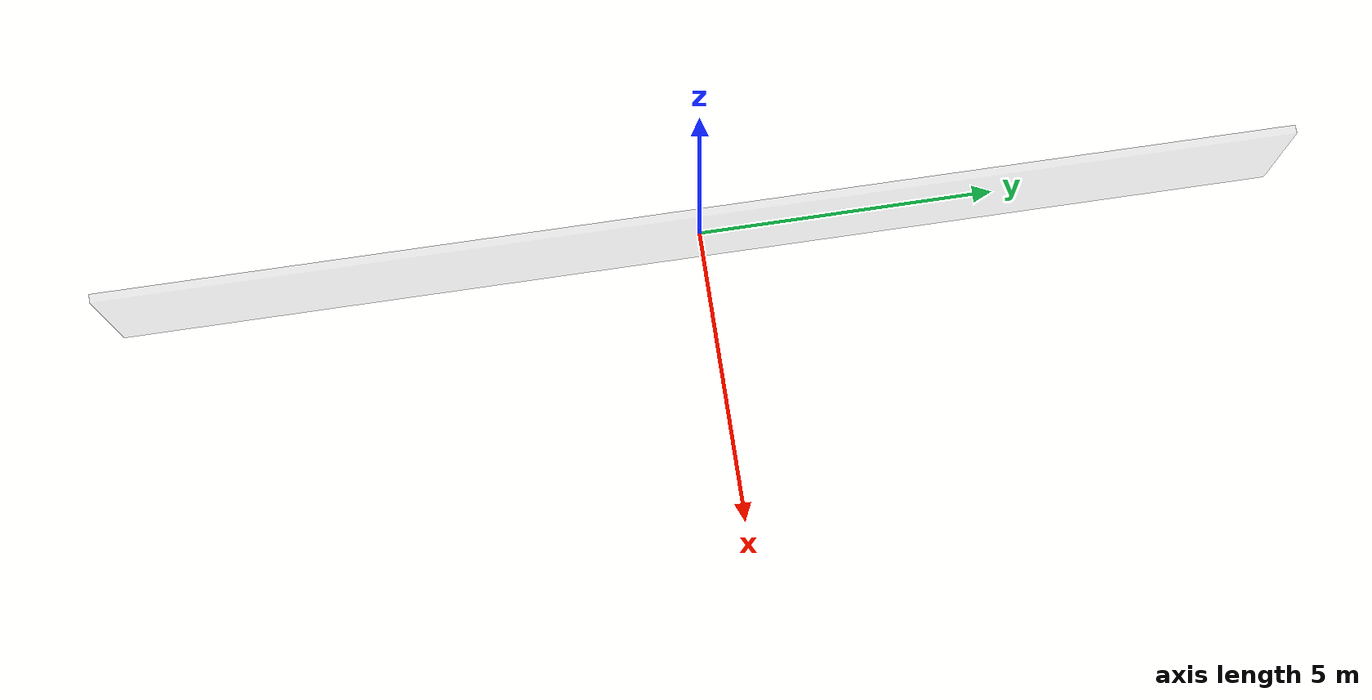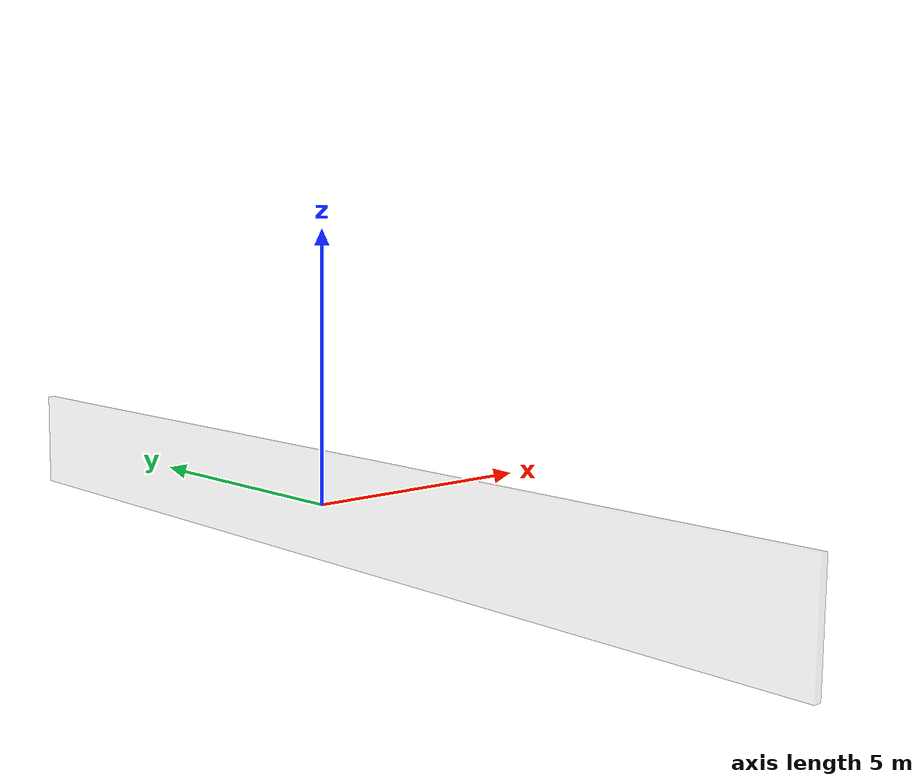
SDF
<?xml version='1.0'?>
<sdf version='1.6'>
  <model name="obs_wall_x">
    <pose frame=''>0 0 0 0 -0 0</pose>
    <static>true</static>
    <link name="wall_link">
        <inertial>
          <mass>100</mass>
        </inertial>
        <collision name="my_collision">
          <laser_retro>0</laser_retro>
          <max_contacts>10</max_contacts>
          <pose frame=''>0 0 0 0 -0 0</pose>
          <geometry>
            <box>
              <!-- 之前设置为0.15 20 2 -->
              <size>0.15 20 2</size>
            </box>
          </geometry>
        </collision>
        <visual name="my_visual">
          <geometry>
            <box>
              <!-- 之前设置为0.15 20 2 -->
              <size>0.15 20 2</size>
            </box>
          </geometry>
          <material>
            <script>
              <uri>file://media/materials/scripts/gazebo.material</uri>
              <name>Gazebo/Gray</name>
            </script>
            <ambient>1 1 1 1</ambient>
          </material>
          <transparency>0.8</transparency>
        </visual>
    </link>
  </model>
</sdf>
